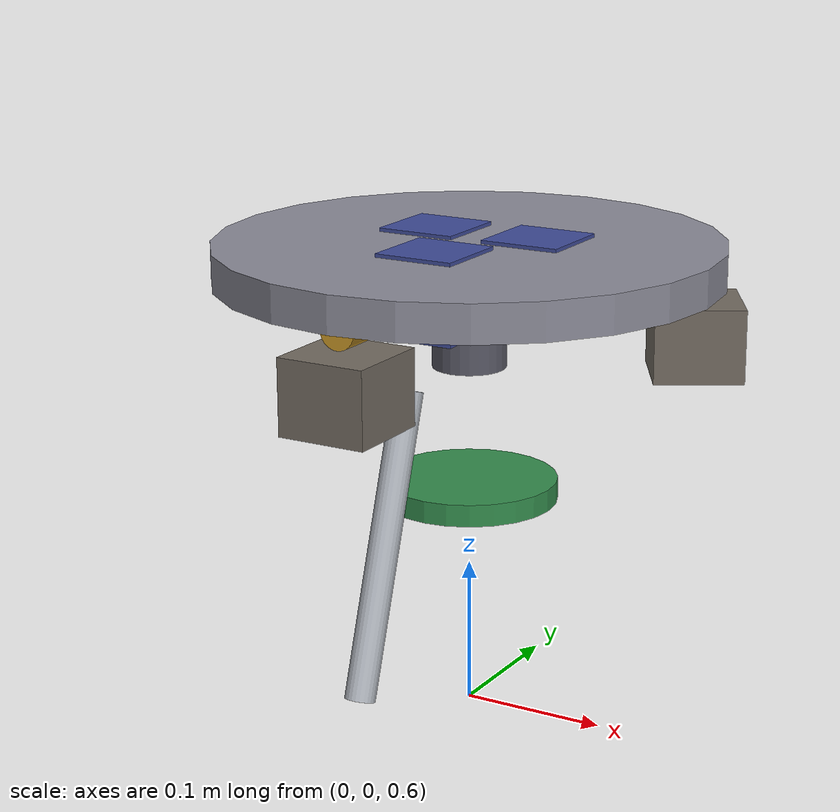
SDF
<?xml version="1.0" ?>
<!-- |    This document was autogenerated by xacro from /root/ros2_ws/src/arm/gazebo/urdf/delta_arm.world.xacro | -->
<!-- |    EDITING THIS FILE BY HAND IS NOT RECOMMENDED                                 | -->
<sdf version="1.6">
  <!-- MACROS                                                                  -->
  <world name="delta_arm_world">
    <include>
      <uri>model://sun</uri>
    </include>
    <include>
      <uri>model://ground_plane</uri>
    </include>
    <physics type="ode">
      <max_step_size>0.001</max_step_size>
      <real_time_factor>1</real_time_factor>
      <real_time_update_rate>1000</real_time_update_rate>
      <ode>
        <solver>
          <type>quick</type>
          <iters>80</iters>
          <precon_iters>0</precon_iters>
        </solver>
        <constraints>
          <cfm>0.00001</cfm>
          <erp>0.2</erp>
        </constraints>
      </ode>
    </physics>
    <scene>
      <ambient>0.5 0.5 0.5 1.0</ambient>
      <background>0.35 0.38 0.45 1.0</background>
      <shadows>true</shadows>
    </scene>
    <!-- Raised so the arm hangs in open space above the ground plane. -->
    <model name="delta_arm">
      <pose>0 0 0.9 0 0 0</pose>
      <!-- BASE                                                               -->
      <link name="base_link">
        <pose>0 0 0 0 0 0</pose>
        <inertial>
          <mass>3.0</mass>
          <inertia>
            <ixx>0.03</ixx>
            <iyy>0.03</iyy>
            <izz>0.05</izz>
            <ixy>0</ixy>
            <ixz>0</ixz>
            <iyz>0</iyz>
          </inertia>
        </inertial>
        <visual name="base_plate">
          <pose>0 0 0.0125 0 0 0</pose>
          <geometry>
            <cylinder>
              <radius>0.17</radius>
              <length>0.025</length>
            </cylinder>
          </geometry>
          <material>
            <ambient>0.55 0.55 0.6 1</ambient>
            <diffuse>0.55 0.55 0.6 1</diffuse>
          </material>
        </visual>
        <collision name="base_plate_col">
          <pose>0 0 0.0125 0 0 0</pose>
          <geometry>
            <cylinder>
              <radius>0.17</radius>
              <length>0.025</length>
            </cylinder>
          </geometry>
        </collision>
        <!-- Central column (visual only). -->
        <visual name="base_column">
          <pose>0 0 -0.03 0 0 0</pose>
          <geometry>
            <cylinder>
              <radius>0.025</radius>
              <length>0.06</length>
            </cylinder>
          </geometry>
          <material>
            <ambient>0.35 0.35 0.4 1</ambient>
            <diffuse>0.35 0.35 0.4 1</diffuse>
          </material>
        </visual>
        <visual name="motor_0">
          <pose>0 -0.045 0 0 0 0</pose>
          <geometry>
            <box>
              <size>0.055 0.055 0.055</size>
            </box>
          </geometry>
          <material>
            <ambient>0.25 0.3 0.6 1</ambient>
            <diffuse>0.25 0.3 0.6 1</diffuse>
          </material>
        </visual>
        <visual name="motor_1">
          <pose>0.03897 0.0225 0 0 0 0</pose>
          <geometry>
            <box>
              <size>0.055 0.055 0.055</size>
            </box>
          </geometry>
          <material>
            <ambient>0.25 0.3 0.6 1</ambient>
            <diffuse>0.25 0.3 0.6 1</diffuse>
          </material>
        </visual>
        <visual name="motor_2">
          <pose>-0.03897 0.0225 0 0 0 0</pose>
          <geometry>
            <box>
              <size>0.055 0.055 0.055</size>
            </box>
          </geometry>
          <material>
            <ambient>0.25 0.3 0.6 1</ambient>
            <diffuse>0.25 0.3 0.6 1</diffuse>
          </material>
        </visual>
        <visual name="servo_0">
          <pose>0 -0.15 -0.04 0 0 -1.5708</pose>
          <geometry>
            <box>
              <size>0.06 0.06 0.05</size>
            </box>
          </geometry>
          <material>
            <ambient>0.45 0.42 0.38 1</ambient>
            <diffuse>0.45 0.42 0.38 1</diffuse>
          </material>
        </visual>
        <visual name="servo_horn_0">
          <pose>0 -0.15 -0.035 0 0 -1.5708</pose>
          <geometry>
            <box>
              <size>0.055 0.012 0.008</size>
            </box>
          </geometry>
          <material>
            <ambient>0.62 0.62 0.68 1</ambient>
            <diffuse>0.62 0.62 0.68 1</diffuse>
          </material>
        </visual>
        <visual name="servo_1">
          <pose>0.1299 0.075 -0.04 0 0 0.5236</pose>
          <geometry>
            <box>
              <size>0.06 0.06 0.05</size>
            </box>
          </geometry>
          <material>
            <ambient>0.45 0.42 0.38 1</ambient>
            <diffuse>0.45 0.42 0.38 1</diffuse>
          </material>
        </visual>
        <visual name="servo_horn_1">
          <pose>0.1299 0.075 -0.035 0 0 0.5236</pose>
          <geometry>
            <box>
              <size>0.055 0.012 0.008</size>
            </box>
          </geometry>
          <material>
            <ambient>0.62 0.62 0.68 1</ambient>
            <diffuse>0.62 0.62 0.68 1</diffuse>
          </material>
        </visual>
        <visual name="servo_2">
          <pose>-0.1299 0.075 -0.04 0 0 2.618</pose>
          <geometry>
            <box>
              <size>0.06 0.06 0.05</size>
            </box>
          </geometry>
          <material>
            <ambient>0.45 0.42 0.38 1</ambient>
            <diffuse>0.45 0.42 0.38 1</diffuse>
          </material>
        </visual>
        <visual name="servo_horn_2">
          <pose>-0.1299 0.075 -0.035 0 0 2.618</pose>
          <geometry>
            <box>
              <size>0.055 0.012 0.008</size>
            </box>
          </geometry>
          <material>
            <ambient>0.62 0.62 0.68 1</ambient>
            <diffuse>0.62 0.62 0.68 1</diffuse>
          </material>
        </visual>
      </link>
      <joint name="base_to_world" type="fixed">
        <parent>world</parent>
        <child>base_link</child>
      </joint>
      <link name="mount_0">
        <pose>0 -0.045 0 0 0 0</pose>
      </link>
      <joint name="mount_0_fixed" type="fixed">
        <parent>base_link</parent>
        <child>mount_0</child>
      </joint>
      <joint name="shoulder_0" type="revolute">
        <parent>mount_0</parent>
        <child>upper_arm_0</child>
        <pose>0 0 0 0 0 0</pose>
        <axis>
          <xyz>1 0 0</xyz>
          <limit>
            <lower>-1.2</lower>
            <upper>1.2</upper>
          </limit>
          <dynamics>
            <damping>0.1</damping>
            <friction>0.01</friction>
          </dynamics>
        </axis>
      </joint>
      <link name="upper_arm_0">
        <pose>0 0 0 0 0 0</pose>
        <inertial>
          <mass>0.2</mass>
          <pose>0 -0.08 0 0 0 0</pose>
          <inertia>
            <ixx>5e-4</ixx>
            <iyy>5e-4</iyy>
            <izz>1e-5</izz>
            <ixy>0</ixy>
            <ixz>0</ixz>
            <iyz>0</iyz>
          </inertia>
        </inertial>
        <visual name="upper_arm_0_vis">
          <pose>0 -0.08 0 1.5708 0 0</pose>
          <geometry>
            <cylinder>
              <radius>0.012</radius>
              <length>0.16</length>
            </cylinder>
          </geometry>
          <material>
            <ambient>0.8 0.6 0.15 1</ambient>
            <diffuse>0.8 0.6 0.15 1</diffuse>
          </material>
        </visual>
        <collision name="upper_arm_0_col">
          <pose>0 -0.08 0 1.5708 0 0</pose>
          <geometry>
            <cylinder>
              <radius>0.012</radius>
              <length>0.16</length>
            </cylinder>
          </geometry>
        </collision>
      </link>
      <joint name="elbow_0" type="ball">
        <parent>upper_arm_0</parent>
        <child>rod_0</child>
        <pose>0 -0.16 0 0 0 0</pose>
      </joint>
      <link name="rod_0">
        <pose>0 0 0 0 0 0</pose>
        <inertial>
          <mass>0.3</mass>
          <pose>0 0 0.1 0 0 0</pose>
          <inertia>
            <ixx>3e-3</ixx>
            <iyy>3e-3</iyy>
            <izz>1e-5</izz>
            <ixy>0</ixy>
            <ixz>0</ixz>
            <iyz>0</iyz>
          </inertia>
        </inertial>
        <visual name="rod_0_vis">
          <pose>0 -0.11 -0.152 2.8239 0 0</pose>
          <geometry>
            <cylinder>
              <radius>0.01</radius>
              <length>0.2</length>
            </cylinder>
          </geometry>
          <material>
            <ambient>0.7 0.72 0.75 1</ambient>
            <diffuse>0.7 0.72 0.75 1</diffuse>
          </material>
        </visual>
        <collision name="rod_0_col">
          <pose>0 -0.11 -0.152 2.8239 0 0</pose>
          <geometry>
            <cylinder>
              <radius>0.01</radius>
              <length>0.2</length>
            </cylinder>
          </geometry>
        </collision>
      </link>
      <joint name="wrist_0" type="ball">
        <parent>rod_0</parent>
        <child>platform</child>
        <pose>0 0 0.2 0 0 0</pose>
      </joint>
      <link name="mount_1">
        <pose>0.03897 0.0225 0 0 0 2.0944</pose>
      </link>
      <joint name="mount_1_fixed" type="fixed">
        <parent>base_link</parent>
        <child>mount_1</child>
      </joint>
      <joint name="shoulder_1" type="revolute">
        <parent>mount_1</parent>
        <child>upper_arm_1</child>
        <pose>0 0 0 0 0 0</pose>
        <axis>
          <xyz>1 0 0</xyz>
          <limit>
            <lower>-1.2</lower>
            <upper>1.2</upper>
          </limit>
          <dynamics>
            <damping>0.1</damping>
            <friction>0.01</friction>
          </dynamics>
        </axis>
      </joint>
      <link name="upper_arm_1">
        <pose>0 0 0 0 0 0</pose>
        <inertial>
          <mass>0.2</mass>
          <pose>0 -0.08 0 0 0 0</pose>
          <inertia>
            <ixx>5e-4</ixx>
            <iyy>5e-4</iyy>
            <izz>1e-5</izz>
            <ixy>0</ixy>
            <ixz>0</ixz>
            <iyz>0</iyz>
          </inertia>
        </inertial>
        <visual name="upper_arm_1_vis">
          <pose>0 -0.08 0 1.5708 0 0</pose>
          <geometry>
            <cylinder>
              <radius>0.012</radius>
              <length>0.16</length>
            </cylinder>
          </geometry>
          <material>
            <ambient>0.8 0.6 0.15 1</ambient>
            <diffuse>0.8 0.6 0.15 1</diffuse>
          </material>
        </visual>
        <collision name="upper_arm_1_col">
          <pose>0 -0.08 0 1.5708 0 0</pose>
          <geometry>
            <cylinder>
              <radius>0.012</radius>
              <length>0.16</length>
            </cylinder>
          </geometry>
        </collision>
      </link>
      <joint name="elbow_1" type="ball">
        <parent>upper_arm_1</parent>
        <child>rod_1</child>
        <pose>0 -0.16 0 0 0 0</pose>
      </joint>
      <link name="rod_1">
        <pose>0 0 0 0 0 0</pose>
        <inertial>
          <mass>0.3</mass>
          <pose>0 0 0.1 0 0 0</pose>
          <inertia>
            <ixx>3e-3</ixx>
            <iyy>3e-3</iyy>
            <izz>1e-5</izz>
            <ixy>0</ixy>
            <ixz>0</ixz>
            <iyz>0</iyz>
          </inertia>
        </inertial>
        <visual name="rod_1_vis">
          <pose>0 -0.11 -0.152 2.8239 0 0</pose>
          <geometry>
            <cylinder>
              <radius>0.01</radius>
              <length>0.2</length>
            </cylinder>
          </geometry>
          <material>
            <ambient>0.7 0.72 0.75 1</ambient>
            <diffuse>0.7 0.72 0.75 1</diffuse>
          </material>
        </visual>
        <collision name="rod_1_col">
          <pose>0 -0.11 -0.152 2.8239 0 0</pose>
          <geometry>
            <cylinder>
              <radius>0.01</radius>
              <length>0.2</length>
            </cylinder>
          </geometry>
        </collision>
      </link>
      <joint name="wrist_1" type="ball">
        <parent>rod_1</parent>
        <child>platform</child>
        <pose>0 0 0.2 0 0 0</pose>
      </joint>
      <link name="mount_2">
        <pose>-0.03897 0.0225 0 0 0 4.1888</pose>
      </link>
      <joint name="mount_2_fixed" type="fixed">
        <parent>base_link</parent>
        <child>mount_2</child>
      </joint>
      <joint name="shoulder_2" type="revolute">
        <parent>mount_2</parent>
        <child>upper_arm_2</child>
        <pose>0 0 0 0 0 0</pose>
        <axis>
          <xyz>1 0 0</xyz>
          <limit>
            <lower>-1.2</lower>
            <upper>1.2</upper>
          </limit>
          <dynamics>
            <damping>0.1</damping>
            <friction>0.01</friction>
          </dynamics>
        </axis>
      </joint>
      <link name="upper_arm_2">
        <pose>0 0 0 0 0 0</pose>
        <inertial>
          <mass>0.2</mass>
          <pose>0 -0.08 0 0 0 0</pose>
          <inertia>
            <ixx>5e-4</ixx>
            <iyy>5e-4</iyy>
            <izz>1e-5</izz>
            <ixy>0</ixy>
            <ixz>0</ixz>
            <iyz>0</iyz>
          </inertia>
        </inertial>
        <visual name="upper_arm_2_vis">
          <pose>0 -0.08 0 1.5708 0 0</pose>
          <geometry>
            <cylinder>
              <radius>0.012</radius>
              <length>0.16</length>
            </cylinder>
          </geometry>
          <material>
            <ambient>0.8 0.6 0.15 1</ambient>
            <diffuse>0.8 0.6 0.15 1</diffuse>
          </material>
        </visual>
        <collision name="upper_arm_2_col">
          <pose>0 -0.08 0 1.5708 0 0</pose>
          <geometry>
            <cylinder>
              <radius>0.012</radius>
              <length>0.16</length>
            </cylinder>
          </geometry>
        </collision>
      </link>
      <joint name="elbow_2" type="ball">
        <parent>upper_arm_2</parent>
        <child>rod_2</child>
        <pose>0 -0.16 0 0 0 0</pose>
      </joint>
      <link name="rod_2">
        <pose>0 0 0 0 0 0</pose>
        <inertial>
          <mass>0.3</mass>
          <pose>0 0 0.1 0 0 0</pose>
          <inertia>
            <ixx>3e-3</ixx>
            <iyy>3e-3</iyy>
            <izz>1e-5</izz>
            <ixy>0</ixy>
            <ixz>0</ixz>
            <iyz>0</iyz>
          </inertia>
        </inertial>
        <visual name="rod_2_vis">
          <pose>0 -0.11 -0.152 2.8239 0 0</pose>
          <geometry>
            <cylinder>
              <radius>0.01</radius>
              <length>0.2</length>
            </cylinder>
          </geometry>
          <material>
            <ambient>0.7 0.72 0.75 1</ambient>
            <diffuse>0.7 0.72 0.75 1</diffuse>
          </material>
        </visual>
        <collision name="rod_2_col">
          <pose>0 -0.11 -0.152 2.8239 0 0</pose>
          <geometry>
            <cylinder>
              <radius>0.01</radius>
              <length>0.2</length>
            </cylinder>
          </geometry>
        </collision>
      </link>
      <joint name="wrist_2" type="ball">
        <parent>rod_2</parent>
        <child>platform</child>
        <pose>0 0 0.2 0 0 0</pose>
      </joint>
      <!-- PLATFORM (end-effector)                                             -->
      <link name="platform">
        <pose>0 0 -0.1377 0 0 0</pose>
        <inertial>
          <mass>0.4</mass>
          <pose>0 0 -0.0075 0 0 0</pose>
          <inertia>
            <ixx>4e-4</ixx>
            <iyy>4e-4</iyy>
            <izz>7e-4</izz>
            <ixy>0</ixy>
            <ixz>0</ixz>
            <iyz>0</iyz>
          </inertia>
        </inertial>
        <visual name="platform_vis">
          <pose>0 0 -0.0075 0 0 0</pose>
          <geometry>
            <cylinder>
              <radius>0.06</radius>
              <length>0.015</length>
            </cylinder>
          </geometry>
          <material>
            <ambient>0.2 0.55 0.3 1</ambient>
            <diffuse>0.2 0.55 0.3 1</diffuse>
          </material>
        </visual>
        <collision name="platform_col">
          <pose>0 0 -0.0075 0 0 0</pose>
          <geometry>
            <cylinder>
              <radius>0.06</radius>
              <length>0.015</length>
            </cylinder>
          </geometry>
        </collision>
        <visual name="effector_marker">
          <pose>0 0 -0.02 0 0 0</pose>
          <geometry>
            <sphere>
              <radius>0.01</radius>
            </sphere>
          </geometry>
          <material>
            <ambient>0.9 0.3 0.25 1</ambient>
            <diffuse>0.9 0.3 0.25 1</diffuse>
          </material>
        </visual>
      </link>
      <!-- Stream the simulated joint angles (rad) for verification. -->
      <plugin filename="libgazebo_ros_joint_state_publisher.so" name="joint_state_pub">
        <ros>
          <remapping>joint_states:=gazebo/joint_states</remapping>
        </ros>
        <joint_name>shoulder_0</joint_name>
        <joint_name>shoulder_1</joint_name>
        <joint_name>shoulder_2</joint_name>
        <update_rate>30</update_rate>
      </plugin>
      <!-- SIM PLUGIN - subscribes to arm/motor_targets (degrees) and servoes   -->
      <!-- the three shoulder joints.                                           -->
      <plugin filename="libdelta_arm_gazebo_plugin.so" name="delta_arm_controller">
        <ros>
          <node_name>delta_arm_gazebo</node_name>
        </ros>
        <shoulder_0>shoulder_0</shoulder_0>
        <shoulder_1>shoulder_1</shoulder_1>
        <shoulder_2>shoulder_2</shoulder_2>
        <kp>25.0</kp>
        <ki>8.0</ki>
        <kd>1.2</kd>
        <tau_max>15.0</tau_max>
      </plugin>
    </model>
  </world>
</sdf>
